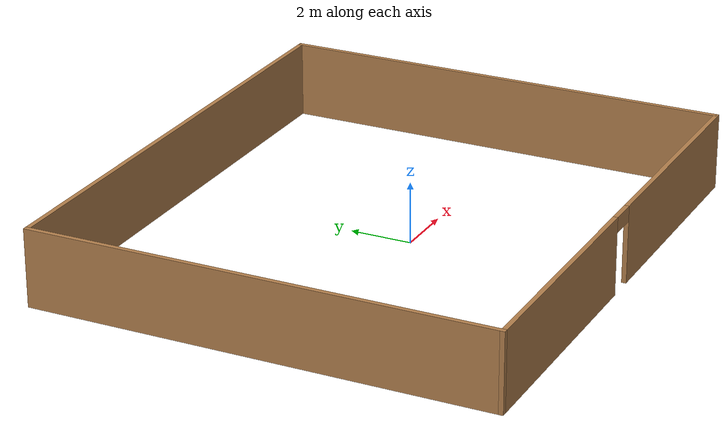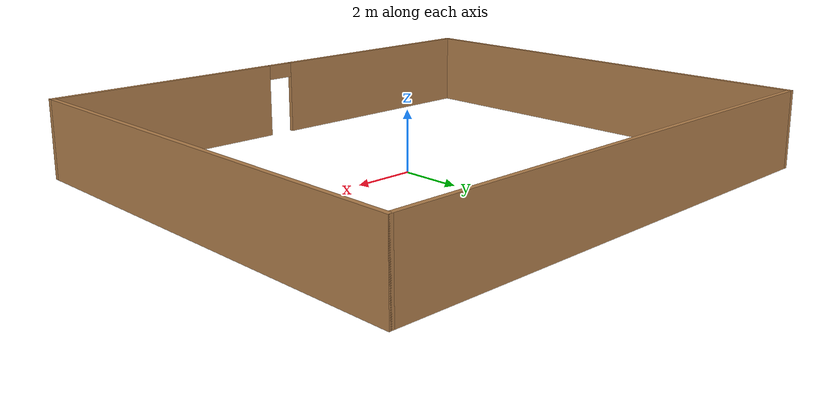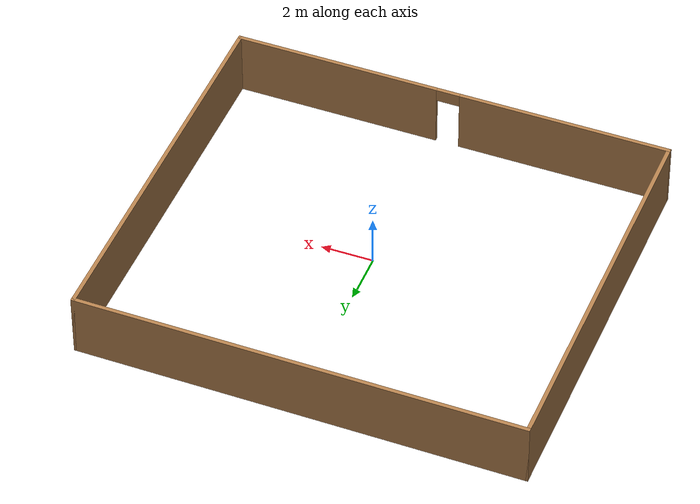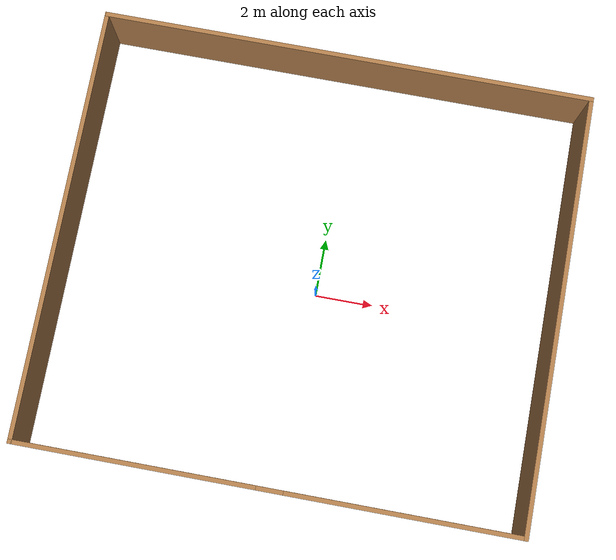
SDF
<?xml version='1.0'?>
<sdf version='1.7'>
  <model name='wall_frame'>
    <pose>-0.364691 0.53379 0 0 -0 0</pose>
    <link name='Wall_5'>
      <collision name='Wall_5_Collision'>
        <geometry>
          <box>
            <size>17 0.15 2.5</size>
          </box>
        </geometry>
        <pose>0 0 1.25 0 -0 0</pose>
      </collision>
      <visual name='Wall_5_Visual'>
        <pose>0 0 1.25 0 -0 0</pose>
        <geometry>
          <box>
            <size>17 0.15 2.5</size>
          </box>
        </geometry>
        <material>
          <script>
            <uri>file://media/materials/scripts/gazebo.material</uri>
            <name>Gazebo/Wood</name>
          </script>
          <ambient>1 1 1 1</ambient>
        </material>
        <meta>
          <layer>0</layer>
        </meta>
      </visual>
      <pose>0 7.425 0 0 -0 0</pose>
    </link>
    <link name='Wall_6'>
      <collision name='Wall_6_Collision'>
        <geometry>
          <box>
            <size>15 0.15 2.5</size>
          </box>
        </geometry>
        <pose>0 0 1.25 0 -0 0</pose>
      </collision>
      <visual name='Wall_6_Visual'>
        <pose>0 0 1.25 0 -0 0</pose>
        <geometry>
          <box>
            <size>15 0.15 2.5</size>
          </box>
        </geometry>
        <material>
          <script>
            <uri>file://media/materials/scripts/gazebo.material</uri>
            <name>Gazebo/Wood</name>
          </script>
          <ambient>1 1 1 1</ambient>
        </material>
        <meta>
          <layer>0</layer>
        </meta>
      </visual>
      <pose>8.425 0 0 0 -0 -1.5708</pose>
    </link>
    <link name='Wall_7'>
      <pose>0 -7.425 0 0 -0 3.14159</pose>
      <visual name='Wall_7_Visual_0'>
        <pose>-4.52902 0 1.25 0 -0 0</pose>
        <geometry>
          <box>
            <size>7.94196 0.15 2.5</size>
          </box>
        </geometry>
        <material>
          <script>
            <uri>file://media/materials/scripts/gazebo.material</uri>
            <name>Gazebo/Wood</name>
          </script>
          <ambient>1 1 1 1</ambient>
        </material>
        <meta>
          <layer>0</layer>
        </meta>
      </visual>
      <collision name='Wall_7_Collision_0'>
        <geometry>
          <box>
            <size>7.94196 0.15 2.5</size>
          </box>
        </geometry>
        <pose>-4.52902 0 1.25 0 -0 0</pose>
      </collision>
      <visual name='Wall_7_Visual_1'>
        <pose>4.42098 0 1.25 0 -0 0</pose>
        <geometry>
          <box>
            <size>8.15804 0.15 2.5</size>
          </box>
        </geometry>
        <material>
          <script>
            <uri>file://media/materials/scripts/gazebo.material</uri>
            <name>Gazebo/Wood</name>
          </script>
          <ambient>1 1 1 1</ambient>
        </material>
        <meta>
          <layer>0</layer>
        </meta>
      </visual>
      <collision name='Wall_7_Collision_1'>
        <geometry>
          <box>
            <size>8.15804 0.15 2.5</size>
          </box>
        </geometry>
        <pose>4.42098 0 1.25 0 -0 0</pose>
      </collision>
      <visual name='Wall_7_Visual_2'>
        <pose>-0.108036 0 2.25 0 -0 0</pose>
        <geometry>
          <box>
            <size>0.9 0.15 0.5</size>
          </box>
        </geometry>
        <material>
          <script>
            <uri>file://media/materials/scripts/gazebo.material</uri>
            <name>Gazebo/Wood</name>
          </script>
          <ambient>1 1 1 1</ambient>
        </material>
        <meta>
          <layer>0</layer>
        </meta>
      </visual>
      <collision name='Wall_7_Collision_2'>
        <geometry>
          <box>
            <size>0.9 0.15 0.5</size>
          </box>
        </geometry>
        <pose>-0.108036 0 2.25 0 -0 0</pose>
      </collision>
    </link>
    <link name='Wall_8'>
      <collision name='Wall_8_Collision'>
        <geometry>
          <box>
            <size>15 0.15 2.5</size>
          </box>
        </geometry>
        <pose>0 0 1.25 0 -0 0</pose>
      </collision>
      <visual name='Wall_8_Visual'>
        <pose>0 0 1.25 0 -0 0</pose>
        <geometry>
          <box>
            <size>15 0.15 2.5</size>
          </box>
        </geometry>
        <material>
          <script>
            <uri>file://media/materials/scripts/gazebo.material</uri>
            <name>Gazebo/Wood</name>
          </script>
          <ambient>1 1 1 1</ambient>
        </material>
        <meta>
          <layer>0</layer>
        </meta>
      </visual>
      <pose>-8.425 0 0 0 -0 1.5708</pose>
    </link>
    <static>1</static>
  </model>
</sdf>
